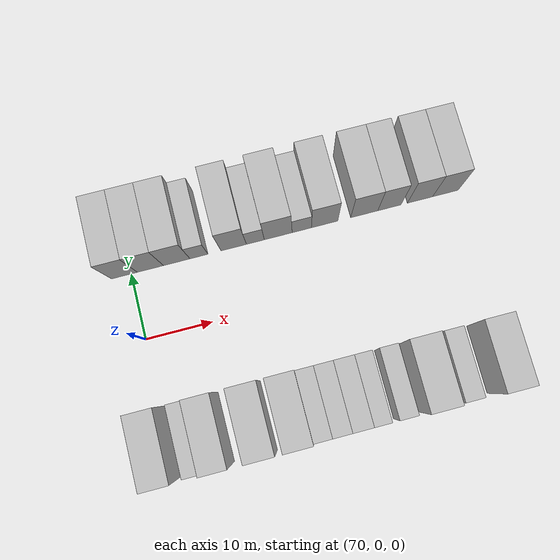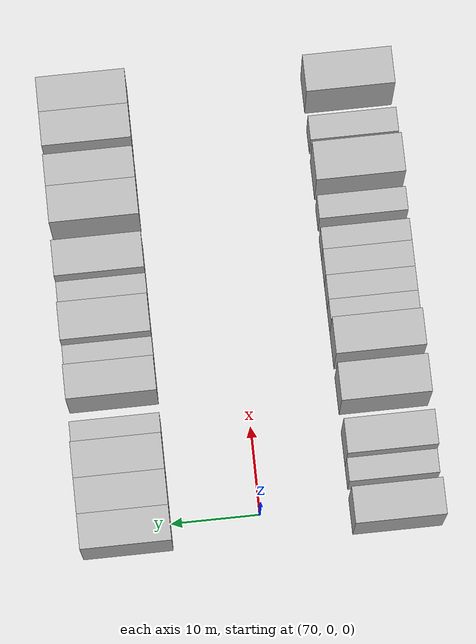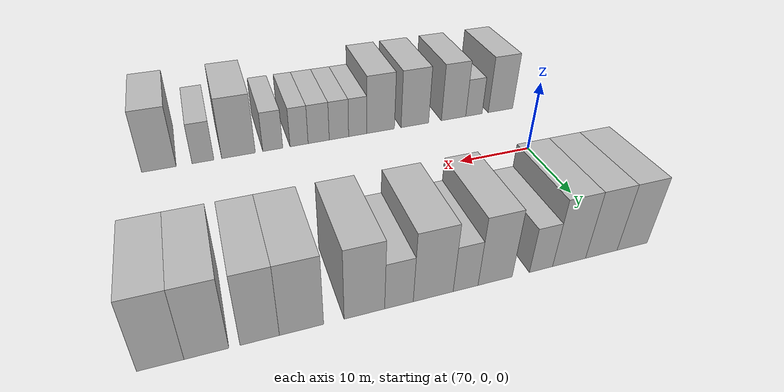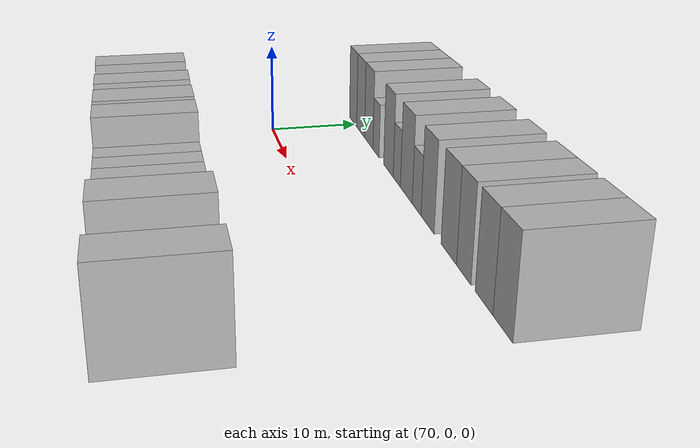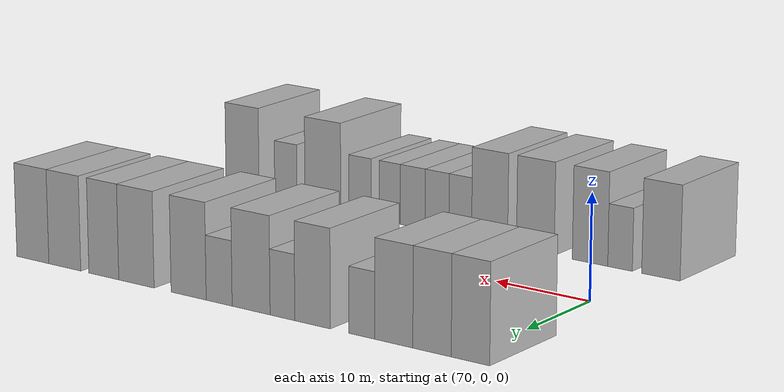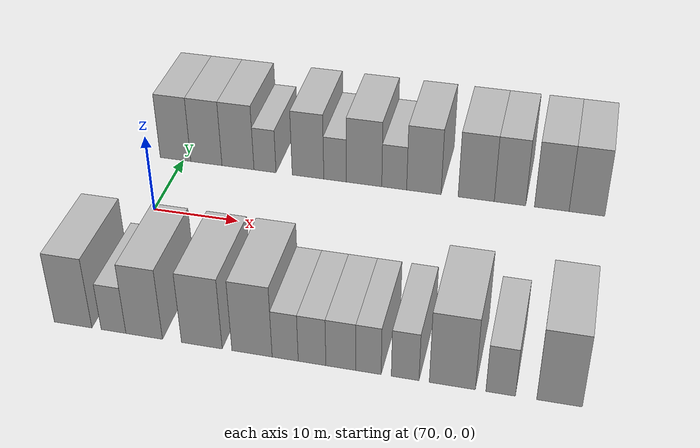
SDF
<sdf version="1.6">
 <world name="default">
  <model name="building_15">
   <static>1</static>
   <pose>68.9917 15.0000 0 0.000000 0.000000 1.570796</pose>
   <link name="link">
    <pose>0 0 4.50 0 0 0</pose>
    <collision name="collision"><geometry><box><size>10.0000 3.8968 9.0000</size></box></geometry></collision>
    <visual name="visual">
     <cast_shadows>0</cast_shadows>
     <geometry><box><size>10.0000 3.8968 9.0000</size></box></geometry>
     <material>
      <script>
       <uri>model://HANNAS_wall/materials/scripts</uri>
       <uri>model://HANNAS_wall/materials/textures</uri>
       <name>vrc/HANNAS_wall</name>
      </script>
     </material>
    </visual>
   </link>
  </model>
  <model name="building_16">
   <static>1</static>
   <pose>72.9153 15.0000 0 0.000000 0.000000 1.570796</pose>
   <link name="link">
    <pose>0 0 4.50 0 0 0</pose>
    <collision name="collision"><geometry><box><size>10.0000 3.9504 9.0000</size></box></geometry></collision>
    <visual name="visual">
     <cast_shadows>0</cast_shadows>
     <geometry><box><size>10.0000 3.9504 9.0000</size></box></geometry>
     <material>
      <script>
       <uri>model://HANNAS_wall/materials/scripts</uri>
       <uri>model://HANNAS_wall/materials/textures</uri>
       <name>vrc/HANNAS_wall</name>
      </script>
     </material>
    </visual>
   </link>
  </model>
  <model name="building_17">
   <static>1</static>
   <pose>76.8977 15.0000 0 0.000000 0.000000 1.570796</pose>
   <link name="link">
    <pose>0 0 4.50 0 0 0</pose>
    <collision name="collision"><geometry><box><size>10.0000 4.0143 9.0000</size></box></geometry></collision>
    <visual name="visual">
     <cast_shadows>0</cast_shadows>
     <geometry><box><size>10.0000 4.0143 9.0000</size></box></geometry>
     <material>
      <script>
       <uri>model://HANNAS_wall/materials/scripts</uri>
       <uri>model://HANNAS_wall/materials/textures</uri>
       <name>vrc/HANNAS_wall</name>
      </script>
     </material>
    </visual>
   </link>
  </model>
  <model name="building_18">
   <static>1</static>
   <pose>80.2734 15.0000 0 0.000000 0.000000 1.570796</pose>
   <link name="link">
    <pose>0 0 3.00 0 0 0</pose>
    <collision name="collision"><geometry><box><size>10.0000 2.7371 6.0000</size></box></geometry></collision>
    <visual name="visual">
     <cast_shadows>0</cast_shadows>
     <geometry><box><size>10.0000 2.7371 6.0000</size></box></geometry>
     <material>
      <script>
       <uri>model://HANNAS_wall/materials/scripts</uri>
       <uri>model://HANNAS_wall/materials/textures</uri>
       <name>vrc/HANNAS_wall</name>
      </script>
     </material>
    </visual>
   </link>
  </model>
  <model name="building_19">
   <static>1</static>
   <pose>85.5805 15.0000 0 0.000000 0.000000 1.570796</pose>
   <link name="link">
    <pose>0 0 4.50 0 0 0</pose>
    <collision name="collision"><geometry><box><size>10.0000 3.8772 9.0000</size></box></geometry></collision>
    <visual name="visual">
     <cast_shadows>0</cast_shadows>
     <geometry><box><size>10.0000 3.8772 9.0000</size></box></geometry>
     <material>
      <script>
       <uri>model://HANNAS_wall/materials/scripts</uri>
       <uri>model://HANNAS_wall/materials/textures</uri>
       <name>vrc/HANNAS_wall</name>
      </script>
     </material>
    </visual>
   </link>
  </model>
  <model name="building_20">
   <static>1</static>
   <pose>88.8902 15.0000 0 0.000000 0.000000 1.570796</pose>
   <link name="link">
    <pose>0 0 3.00 0 0 0</pose>
    <collision name="collision"><geometry><box><size>10.0000 2.7421 6.0000</size></box></geometry></collision>
    <visual name="visual">
     <cast_shadows>0</cast_shadows>
     <geometry><box><size>10.0000 2.7421 6.0000</size></box></geometry>
     <material>
      <script>
       <uri>model://HANNAS_wall/materials/scripts</uri>
       <uri>model://HANNAS_wall/materials/textures</uri>
       <name>vrc/HANNAS_wall</name>
      </script>
     </material>
    </visual>
   </link>
  </model>
  <model name="building_21">
   <static>1</static>
   <pose>92.3960 15.0000 0 0.000000 0.000000 1.570796</pose>
   <link name="link">
    <pose>0 0 4.50 0 0 0</pose>
    <collision name="collision"><geometry><box><size>10.0000 4.2694 9.0000</size></box></geometry></collision>
    <visual name="visual">
     <cast_shadows>0</cast_shadows>
     <geometry><box><size>10.0000 4.2694 9.0000</size></box></geometry>
     <material>
      <script>
       <uri>model://HANNAS_wall/materials/scripts</uri>
       <uri>model://HANNAS_wall/materials/textures</uri>
       <name>vrc/HANNAS_wall</name>
      </script>
     </material>
    </visual>
   </link>
  </model>
  <model name="building_22">
   <static>1</static>
   <pose>96.0144 15.0000 0 0.000000 0.000000 1.570796</pose>
   <link name="link">
    <pose>0 0 3.00 0 0 0</pose>
    <collision name="collision"><geometry><box><size>10.0000 2.9675 6.0000</size></box></geometry></collision>
    <visual name="visual">
     <cast_shadows>0</cast_shadows>
     <geometry><box><size>10.0000 2.9675 6.0000</size></box></geometry>
     <material>
      <script>
       <uri>model://HANNAS_wall/materials/scripts</uri>
       <uri>model://HANNAS_wall/materials/textures</uri>
       <name>vrc/HANNAS_wall</name>
      </script>
     </material>
    </visual>
   </link>
  </model>
  <model name="building_23">
   <static>1</static>
   <pose>99.5372 15.0000 0 0.000000 0.000000 1.570796</pose>
   <link name="link">
    <pose>0 0 4.50 0 0 0</pose>
    <collision name="collision"><geometry><box><size>10.0000 4.0781 9.0000</size></box></geometry></collision>
    <visual name="visual">
     <cast_shadows>0</cast_shadows>
     <geometry><box><size>10.0000 4.0781 9.0000</size></box></geometry>
     <material>
      <script>
       <uri>model://HANNAS_wall/materials/scripts</uri>
       <uri>model://HANNAS_wall/materials/textures</uri>
       <name>vrc/HANNAS_wall</name>
      </script>
     </material>
    </visual>
   </link>
  </model>
  <model name="building_24">
   <static>1</static>
   <pose>105.6839 15.0000 0 0.000000 0.000000 1.570796</pose>
   <link name="link">
    <pose>0 0 4.50 0 0 0</pose>
    <collision name="collision"><geometry><box><size>10.0000 4.2154 9.0000</size></box></geometry></collision>
    <visual name="visual">
     <cast_shadows>0</cast_shadows>
     <geometry><box><size>10.0000 4.2154 9.0000</size></box></geometry>
     <material>
      <script>
       <uri>model://HANNAS_wall/materials/scripts</uri>
       <uri>model://HANNAS_wall/materials/textures</uri>
       <name>vrc/HANNAS_wall</name>
      </script>
     </material>
    </visual>
   </link>
  </model>
  <model name="building_25">
   <static>1</static>
   <pose>109.6026 15.0000 0 0.000000 0.000000 1.570796</pose>
   <link name="link">
    <pose>0 0 4.50 0 0 0</pose>
    <collision name="collision"><geometry><box><size>10.0000 3.6221 9.0000</size></box></geometry></collision>
    <visual name="visual">
     <cast_shadows>0</cast_shadows>
     <geometry><box><size>10.0000 3.6221 9.0000</size></box></geometry>
     <material>
      <script>
       <uri>model://HANNAS_wall/materials/scripts</uri>
       <uri>model://HANNAS_wall/materials/textures</uri>
       <name>vrc/HANNAS_wall</name>
      </script>
     </material>
    </visual>
   </link>
  </model>
  <model name="building_26">
   <static>1</static>
   <pose>114.3878 15.0000 0 0.000000 0.000000 1.570796</pose>
   <link name="link">
    <pose>0 0 4.50 0 0 0</pose>
    <collision name="collision"><geometry><box><size>10.0000 3.9483 9.0000</size></box></geometry></collision>
    <visual name="visual">
     <cast_shadows>0</cast_shadows>
     <geometry><box><size>10.0000 3.9483 9.0000</size></box></geometry>
     <material>
      <script>
       <uri>model://HANNAS_wall/materials/scripts</uri>
       <uri>model://HANNAS_wall/materials/textures</uri>
       <name>vrc/HANNAS_wall</name>
      </script>
     </material>
    </visual>
   </link>
  </model>
  <model name="building_27">
   <static>1</static>
   <pose>118.3760 15.0000 0 0.000000 0.000000 1.570796</pose>
   <link name="link">
    <pose>0 0 4.50 0 0 0</pose>
    <collision name="collision"><geometry><box><size>10.0000 4.0280 9.0000</size></box></geometry></collision>
    <visual name="visual">
     <cast_shadows>0</cast_shadows>
     <geometry><box><size>10.0000 4.0280 9.0000</size></box></geometry>
     <material>
      <script>
       <uri>model://HANNAS_wall/materials/scripts</uri>
       <uri>model://HANNAS_wall/materials/textures</uri>
       <name>vrc/HANNAS_wall</name>
      </script>
     </material>
    </visual>
   </link>
  </model>
  <model name="building_68">
   <static>1</static>
   <pose>68.7747 -15.0000 0 0.000000 0.000000 1.570796</pose>
   <link name="link">
    <pose>0 0 4.50 0 0 0</pose>
    <collision name="collision"><geometry><box><size>10.0000 4.0665 9.0000</size></box></geometry></collision>
    <visual name="visual">
     <cast_shadows>0</cast_shadows>
     <geometry><box><size>10.0000 4.0665 9.0000</size></box></geometry>
     <material>
      <script>
       <uri>model://HANNAS_wall/materials/scripts</uri>
       <uri>model://HANNAS_wall/materials/textures</uri>
       <name>vrc/HANNAS_wall</name>
      </script>
     </material>
    </visual>
   </link>
  </model>
  <model name="building_69">
   <static>1</static>
   <pose>73.1329 -15.0000 0 0.000000 0.000000 1.570796</pose>
   <link name="link">
    <pose>0 0 3.00 0 0 0</pose>
    <collision name="collision"><geometry><box><size>10.0000 2.6498 6.0000</size></box></geometry></collision>
    <visual name="visual">
     <cast_shadows>0</cast_shadows>
     <geometry><box><size>10.0000 2.6498 6.0000</size></box></geometry>
     <material>
      <script>
       <uri>model://HANNAS_wall/materials/scripts</uri>
       <uri>model://HANNAS_wall/materials/textures</uri>
       <name>vrc/HANNAS_wall</name>
      </script>
     </material>
    </visual>
   </link>
  </model>
  <model name="building_70">
   <static>1</static>
   <pose>76.3971 -15.0000 0 0.000000 0.000000 1.570796</pose>
   <link name="link">
    <pose>0 0 4.50 0 0 0</pose>
    <collision name="collision"><geometry><box><size>10.0000 3.8786 9.0000</size></box></geometry></collision>
    <visual name="visual">
     <cast_shadows>0</cast_shadows>
     <geometry><box><size>10.0000 3.8786 9.0000</size></box></geometry>
     <material>
      <script>
       <uri>model://HANNAS_wall/materials/scripts</uri>
       <uri>model://HANNAS_wall/materials/textures</uri>
       <name>vrc/HANNAS_wall</name>
      </script>
     </material>
    </visual>
   </link>
  </model>
  <model name="building_71">
   <static>1</static>
   <pose>82.4584 -15.0000 0 0.000000 0.000000 1.570796</pose>
   <link name="link">
    <pose>0 0 4.50 0 0 0</pose>
    <collision name="collision"><geometry><box><size>10.0000 4.2440 9.0000</size></box></geometry></collision>
    <visual name="visual">
     <cast_shadows>0</cast_shadows>
     <geometry><box><size>10.0000 4.2440 9.0000</size></box></geometry>
     <material>
      <script>
       <uri>model://HANNAS_wall/materials/scripts</uri>
       <uri>model://HANNAS_wall/materials/textures</uri>
       <name>vrc/HANNAS_wall</name>
      </script>
     </material>
    </visual>
   </link>
  </model>
  <model name="building_72">
   <static>1</static>
   <pose>87.6436 -15.0000 0 0.000000 0.000000 1.570796</pose>
   <link name="link">
    <pose>0 0 4.50 0 0 0</pose>
    <collision name="collision"><geometry><box><size>10.0000 4.1266 9.0000</size></box></geometry></collision>
    <visual name="visual">
     <cast_shadows>0</cast_shadows>
     <geometry><box><size>10.0000 4.1266 9.0000</size></box></geometry>
     <material>
      <script>
       <uri>model://HANNAS_wall/materials/scripts</uri>
       <uri>model://HANNAS_wall/materials/textures</uri>
       <name>vrc/HANNAS_wall</name>
      </script>
     </material>
    </visual>
   </link>
  </model>
  <model name="building_73">
   <static>1</static>
   <pose>91.0307 -15.0000 0 0.000000 0.000000 1.570796</pose>
   <link name="link">
    <pose>0 0 3.00 0 0 0</pose>
    <collision name="collision"><geometry><box><size>10.0000 2.6475 6.0000</size></box></geometry></collision>
    <visual name="visual">
     <cast_shadows>0</cast_shadows>
     <geometry><box><size>10.0000 2.6475 6.0000</size></box></geometry>
     <material>
      <script>
       <uri>model://HANNAS_wall/materials/scripts</uri>
       <uri>model://HANNAS_wall/materials/textures</uri>
       <name>vrc/HANNAS_wall</name>
      </script>
     </material>
    </visual>
   </link>
  </model>
  <model name="building_74">
   <static>1</static>
   <pose>93.7445 -15.0000 0 0.000000 0.000000 1.570796</pose>
   <link name="link">
    <pose>0 0 3.00 0 0 0</pose>
    <collision name="collision"><geometry><box><size>10.0000 2.7800 6.0000</size></box></geometry></collision>
    <visual name="visual">
     <cast_shadows>0</cast_shadows>
     <geometry><box><size>10.0000 2.7800 6.0000</size></box></geometry>
     <material>
      <script>
       <uri>model://HANNAS_wall/materials/scripts</uri>
       <uri>model://HANNAS_wall/materials/textures</uri>
       <name>vrc/HANNAS_wall</name>
      </script>
     </material>
    </visual>
   </link>
  </model>
  <model name="building_75">
   <static>1</static>
   <pose>96.6247 -15.0000 0 0.000000 0.000000 1.570796</pose>
   <link name="link">
    <pose>0 0 3.00 0 0 0</pose>
    <collision name="collision"><geometry><box><size>10.0000 2.9805 6.0000</size></box></geometry></collision>
    <visual name="visual">
     <cast_shadows>0</cast_shadows>
     <geometry><box><size>10.0000 2.9805 6.0000</size></box></geometry>
     <material>
      <script>
       <uri>model://HANNAS_wall/materials/scripts</uri>
       <uri>model://HANNAS_wall/materials/textures</uri>
       <name>vrc/HANNAS_wall</name>
      </script>
     </material>
    </visual>
   </link>
  </model>
  <model name="building_76">
   <static>1</static>
   <pose>99.3688 -15.0000 0 0.000000 0.000000 1.570796</pose>
   <link name="link">
    <pose>0 0 3.00 0 0 0</pose>
    <collision name="collision"><geometry><box><size>10.0000 2.5076 6.0000</size></box></geometry></collision>
    <visual name="visual">
     <cast_shadows>0</cast_shadows>
     <geometry><box><size>10.0000 2.5076 6.0000</size></box></geometry>
     <material>
      <script>
       <uri>model://HANNAS_wall/materials/scripts</uri>
       <uri>model://HANNAS_wall/materials/textures</uri>
       <name>vrc/HANNAS_wall</name>
      </script>
     </material>
    </visual>
   </link>
  </model>
  <model name="building_77">
   <static>1</static>
   <pose>102.9765 -15.0000 0 0.000000 0.000000 1.570796</pose>
   <link name="link">
    <pose>0 0 3.00 0 0 0</pose>
    <collision name="collision"><geometry><box><size>10.0000 2.7079 6.0000</size></box></geometry></collision>
    <visual name="visual">
     <cast_shadows>0</cast_shadows>
     <geometry><box><size>10.0000 2.7079 6.0000</size></box></geometry>
     <material>
      <script>
       <uri>model://HANNAS_wall/materials/scripts</uri>
       <uri>model://HANNAS_wall/materials/textures</uri>
       <name>vrc/HANNAS_wall</name>
      </script>
     </material>
    </visual>
   </link>
  </model>
  <model name="building_78">
   <static>1</static>
   <pose>107.5526 -15.0000 0 0.000000 0.000000 1.570796</pose>
   <link name="link">
    <pose>0 0 4.50 0 0 0</pose>
    <collision name="collision"><geometry><box><size>10.0000 4.4445 9.0000</size></box></geometry></collision>
    <visual name="visual">
     <cast_shadows>0</cast_shadows>
     <geometry><box><size>10.0000 4.4445 9.0000</size></box></geometry>
     <material>
      <script>
       <uri>model://HANNAS_wall/materials/scripts</uri>
       <uri>model://HANNAS_wall/materials/textures</uri>
       <name>vrc/HANNAS_wall</name>
      </script>
     </material>
    </visual>
   </link>
  </model>
  <model name="building_79">
   <static>1</static>
   <pose>112.1808 -15.0000 0 0.000000 0.000000 1.570796</pose>
   <link name="link">
    <pose>0 0 3.00 0 0 0</pose>
    <collision name="collision"><geometry><box><size>10.0000 2.8119 6.0000</size></box></geometry></collision>
    <visual name="visual">
     <cast_shadows>0</cast_shadows>
     <geometry><box><size>10.0000 2.8119 6.0000</size></box></geometry>
     <material>
      <script>
       <uri>model://HANNAS_wall/materials/scripts</uri>
       <uri>model://HANNAS_wall/materials/textures</uri>
       <name>vrc/HANNAS_wall</name>
      </script>
     </material>
    </visual>
   </link>
  </model>
  <model name="building_80">
   <static>1</static>
   <pose>117.7212 -15.0000 0 0.000000 0.000000 1.570796</pose>
   <link name="link">
    <pose>0 0 4.50 0 0 0</pose>
    <collision name="collision"><geometry><box><size>10.0000 4.2688 9.0000</size></box></geometry></collision>
    <visual name="visual">
     <cast_shadows>0</cast_shadows>
     <geometry><box><size>10.0000 4.2688 9.0000</size></box></geometry>
     <material>
      <script>
       <uri>model://HANNAS_wall/materials/scripts</uri>
       <uri>model://HANNAS_wall/materials/textures</uri>
       <name>vrc/HANNAS_wall</name>
      </script>
     </material>
    </visual>
   </link>
  </model>
 </world>
</sdf>
